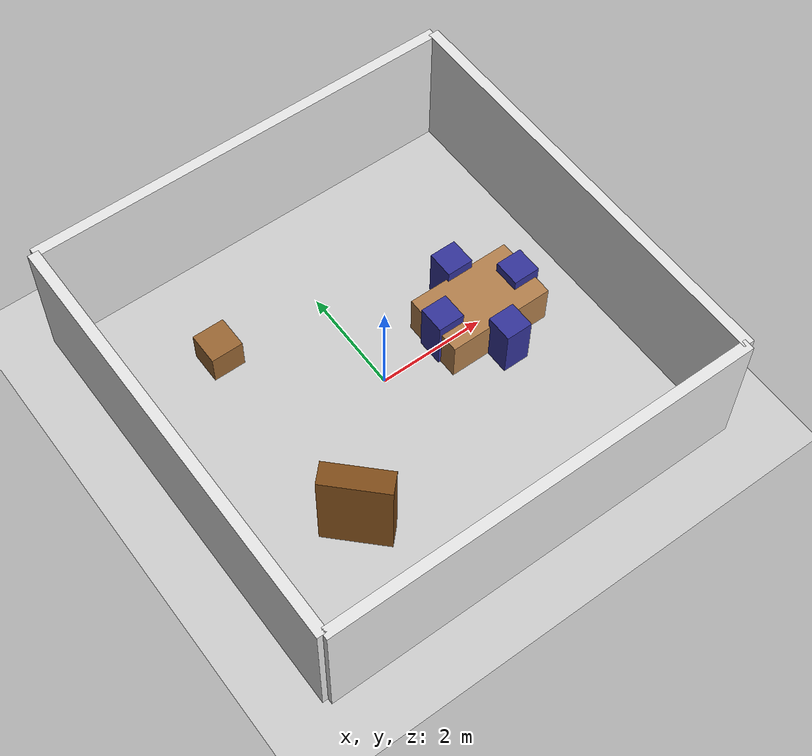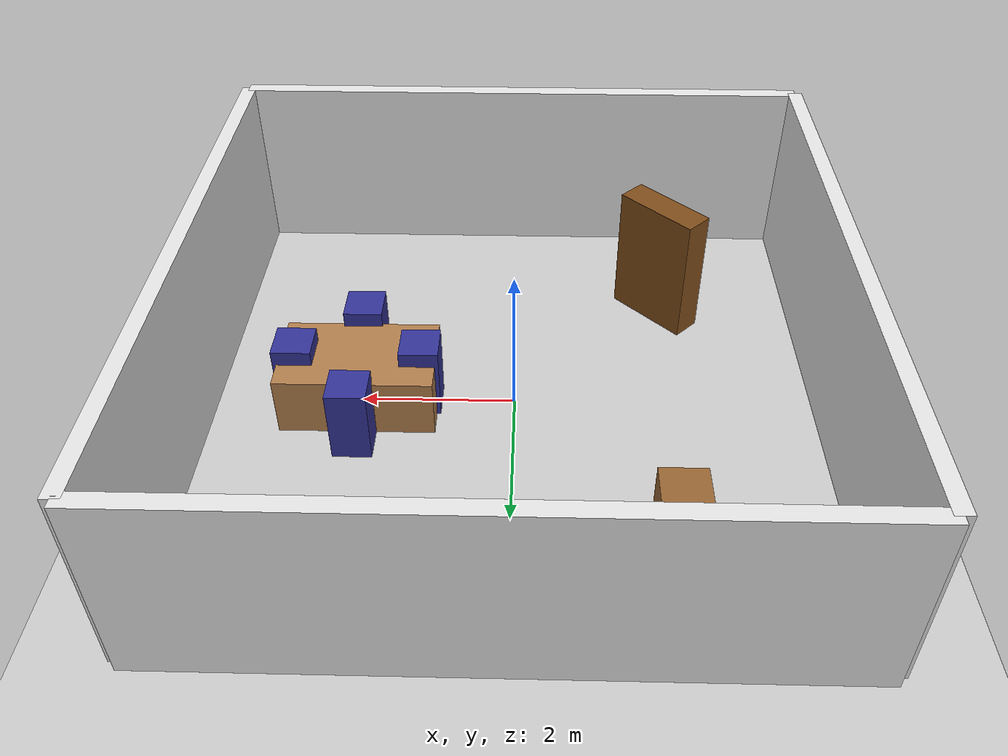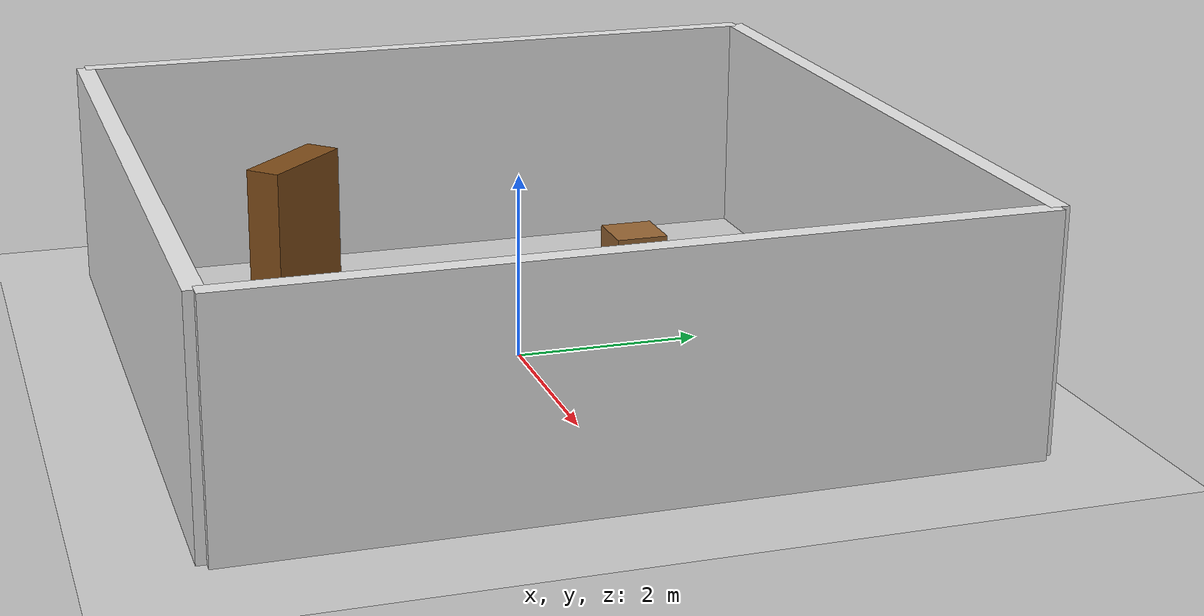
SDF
<?xml version="1.0" ?>
<sdf version="1.6">
  <world name="test_room">
    <!-- Add a light source -->
    <include>
      <uri>model://sun</uri>
    </include>

    <!-- Ground Plane -->
    <model name="ground_plane">
      <static>true</static>
      <link name="link">
        <collision name="collision">
          <geometry>
            <plane>
              <normal>0 0 1</normal>
              <size>10 10</size>
            </plane>
          </geometry>
          <surface>
            <friction>
              <ode>
                <mu>100</mu>
                <mu2>50</mu2>
              </ode>
            </friction>
          </surface>
        </collision>
        <visual name="visual">
          <geometry>
            <plane>
              <normal>0 0 1</normal>
              <size>10 10</size>
            </plane>
          </geometry>
          <material>
            <ambient>0.8 0.8 0.8 1</ambient>
            <diffuse>0.8 0.8 0.8 1</diffuse>
            <specular>0.1 0.1 0.1 1</specular>
          </material>
        </visual>
      </link>
    </model>

    <!-- Room walls -->
    <model name="wall_1">
      <static>true</static>
      <pose>4 0 1.25 0 0 0</pose>
      <link name="link">
        <collision name="collision">
          <geometry>
            <box>
              <size>0.2 8 2.5</size>
            </box>
          </geometry>
        </collision>
        <visual name="visual">
          <geometry>
            <box>
              <size>0.2 8 2.5</size>
            </box>
          </geometry>
          <material>
            <ambient>0.9 0.9 0.9 1</ambient>
            <diffuse>0.9 0.9 0.9 1</diffuse>
          </material>
        </visual>
      </link>
    </model>

    <model name="wall_2">
      <static>true</static>
      <pose>-4 0 1.25 0 0 0</pose>
      <link name="link">
        <collision name="collision">
          <geometry>
            <box>
              <size>0.2 8 2.5</size>
            </box>
          </geometry>
        </collision>
        <visual name="visual">
          <geometry>
            <box>
              <size>0.2 8 2.5</size>
            </box>
          </geometry>
          <material>
            <ambient>0.9 0.9 0.9 1</ambient>
            <diffuse>0.9 0.9 0.9 1</diffuse>
          </material>
        </visual>
      </link>
    </model>

    <model name="wall_3">
      <static>true</static>
      <pose>0 4 1.25 0 0 1.5708</pose>
      <link name="link">
        <collision name="collision">
          <geometry>
            <box>
              <size>0.2 8 2.5</size>
            </box>
          </geometry>
        </collision>
        <visual name="visual">
          <geometry>
            <box>
              <size>0.2 8 2.5</size>
            </box>
          </geometry>
          <material>
            <ambient>0.9 0.9 0.9 1</ambient>
            <diffuse>0.9 0.9 0.9 1</diffuse>
          </material>
        </visual>
      </link>
    </model>

    <model name="wall_4">
      <static>true</static>
      <pose>0 -4 1.25 0 0 1.5708</pose>
      <link name="link">
        <collision name="collision">
          <geometry>
            <box>
              <size>0.2 8 2.5</size>
            </box>
          </geometry>
        </collision>
        <visual name="visual">
          <geometry>
            <box>
              <size>0.2 8 2.5</size>
            </box>
          </geometry>
          <material>
            <ambient>0.9 0.9 0.9 1</ambient>
            <diffuse>0.9 0.9 0.9 1</diffuse>
          </material>
        </visual>
      </link>
    </model>

    <!-- Conference Table -->
    <model name="conference_table">
      <static>true</static>
      <pose>2 0 0.4 0 0 0</pose>
      <link name="link">
        <collision name="collision">
          <geometry>
            <box>
              <size>2.0 1.2 0.8</size>
            </box>
          </geometry>
        </collision>
        <visual name="visual">
          <geometry>
            <box>
              <size>2.0 1.2 0.8</size>
            </box>
          </geometry>
          <material>
            <ambient>0.7 0.5 0.3 1</ambient>
            <diffuse>0.7 0.5 0.3 1</diffuse>
          </material>
        </visual>
      </link>
    </model>

    <!-- Chairs -->
    <model name="chair1">
      <static>true</static>
      <pose>2 0.8 0.5 0 0 3.14159</pose>
      <link name="link">
        <collision name="collision">
          <geometry>
            <box>
              <size>0.5 0.5 1.0</size>
            </box>
          </geometry>
        </collision>
        <visual name="visual">
          <geometry>
            <box>
              <size>0.5 0.5 1.0</size>
            </box>
          </geometry>
          <material>
            <ambient>0.2 0.2 0.6 1</ambient>
            <diffuse>0.2 0.2 0.6 1</diffuse>
          </material>
        </visual>
      </link>
    </model>

    <model name="chair2">
      <static>true</static>
      <pose>2 -0.8 0.5 0 0 0</pose>
      <link name="link">
        <collision name="collision">
          <geometry>
            <box>
              <size>0.5 0.5 1.0</size>
            </box>
          </geometry>
        </collision>
        <visual name="visual">
          <geometry>
            <box>
              <size>0.5 0.5 1.0</size>
            </box>
          </geometry>
          <material>
            <ambient>0.2 0.2 0.6 1</ambient>
            <diffuse>0.2 0.2 0.6 1</diffuse>
          </material>
        </visual>
      </link>
    </model>

    <model name="chair3">
      <static>true</static>
      <pose>1.2 0 0.5 0 0 1.5708</pose>
      <link name="link">
        <collision name="collision">
          <geometry>
            <box>
              <size>0.5 0.5 1.0</size>
            </box>
          </geometry>
        </collision>
        <visual name="visual">
          <geometry>
            <box>
              <size>0.5 0.5 1.0</size>
            </box>
          </geometry>
          <material>
            <ambient>0.2 0.2 0.6 1</ambient>
            <diffuse>0.2 0.2 0.6 1</diffuse>
          </material>
        </visual>
      </link>
    </model>

    <model name="chair4">
      <static>true</static>
      <pose>2.8 0 0.5 0 0 -1.5708</pose>
      <link name="link">
        <collision name="collision">
          <geometry>
            <box>
              <size>0.5 0.5 1.0</size>
            </box>
          </geometry>
        </collision>
        <visual name="visual">
          <geometry>
            <box>
              <size>0.5 0.5 1.0</size>
            </box>
          </geometry>
          <material>
            <ambient>0.2 0.2 0.6 1</ambient>
            <diffuse>0.2 0.2 0.6 1</diffuse>
          </material>
        </visual>
      </link>
    </model>

    <!-- Bookshelf -->
    <model name="bookshelf">
      <static>true</static>
      <pose>-2 -2 0.9 0 0 0.785398</pose>
      <link name="link">
        <collision name="collision">
          <geometry>
            <box>
              <size>0.4 1.2 1.8</size>
            </box>
          </geometry>
        </collision>
        <visual name="visual">
          <geometry>
            <box>
              <size>0.4 1.2 1.8</size>
            </box>
          </geometry>
          <material>
            <ambient>0.5 0.3 0.1 1</ambient>
            <diffuse>0.5 0.3 0.1 1</diffuse>
          </material>
        </visual>
      </link>
    </model>

    <!-- Side Table -->
    <model name="side_table">
      <static>true</static>
      <pose>-2 2 0.3 0 0 0</pose>
      <link name="link">
        <collision name="collision">
          <geometry>
            <box>
              <size>0.6 0.6 0.6</size>
            </box>
          </geometry>
        </collision>
        <visual name="visual">
          <geometry>
            <box>
              <size>0.6 0.6 0.6</size>
            </box>
          </geometry>
          <material>
            <ambient>0.6 0.4 0.2 1</ambient>
            <diffuse>0.6 0.4 0.2 1</diffuse>
          </material>
        </visual>
      </link>
    </model>
  </world>
</sdf>
